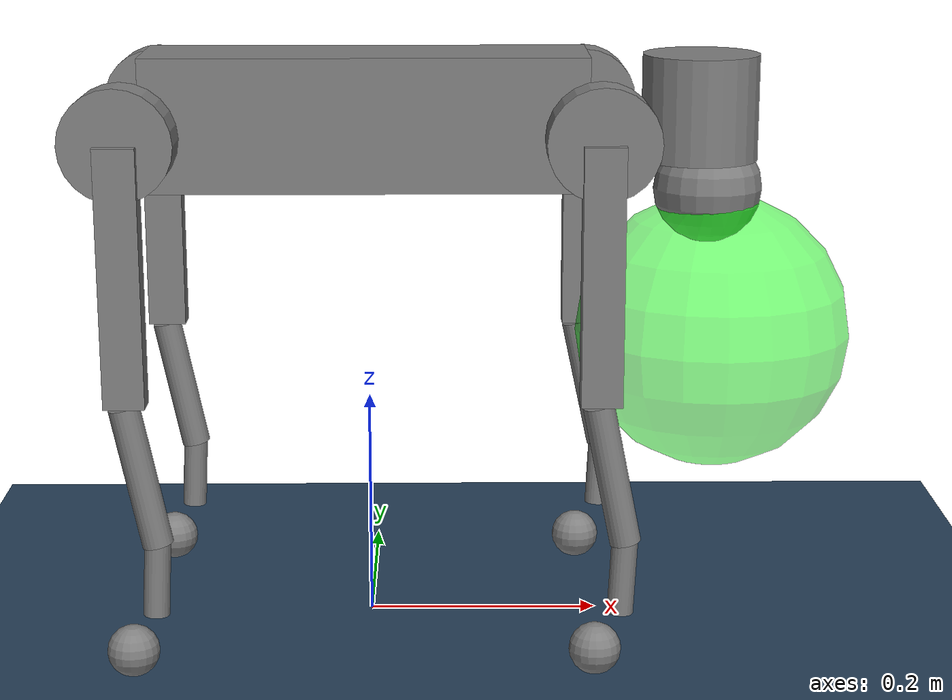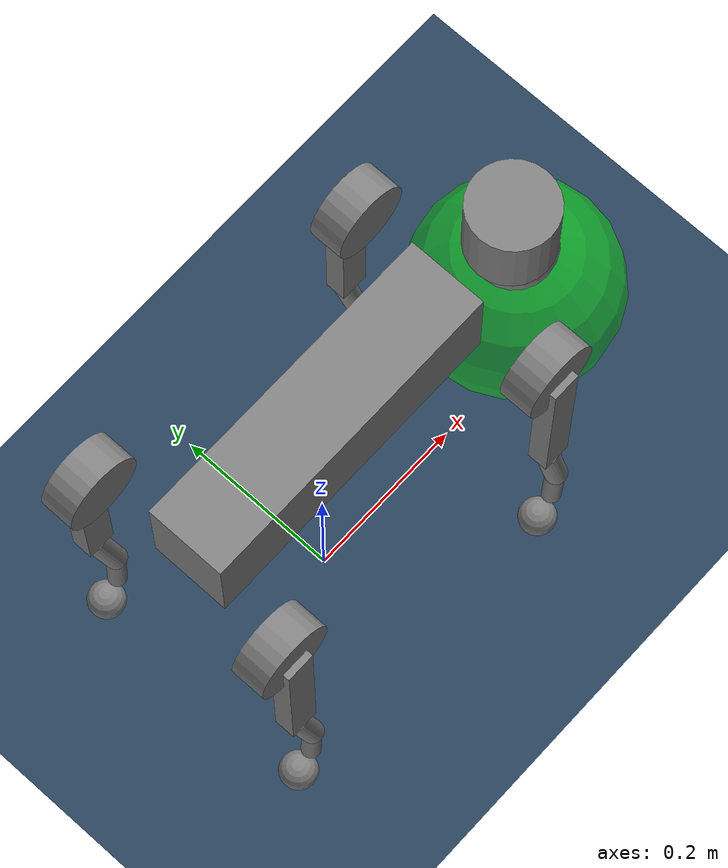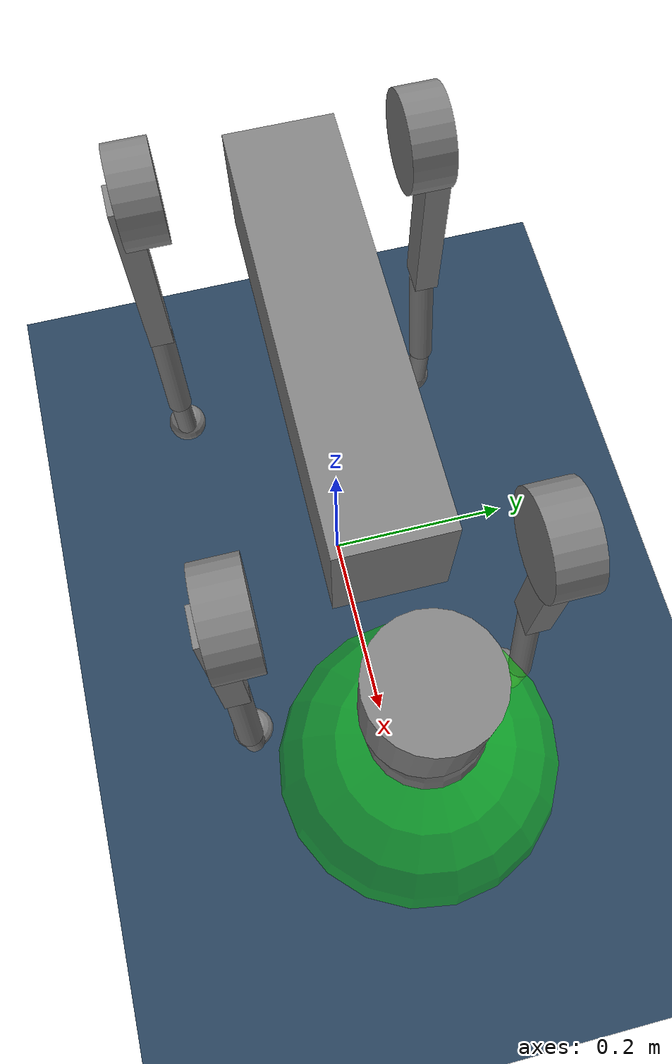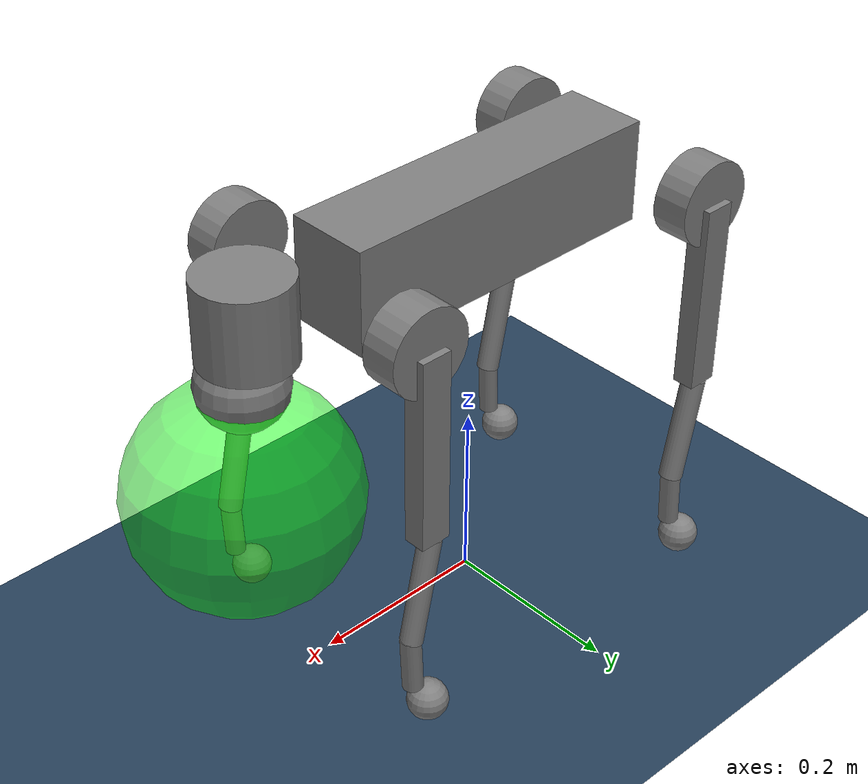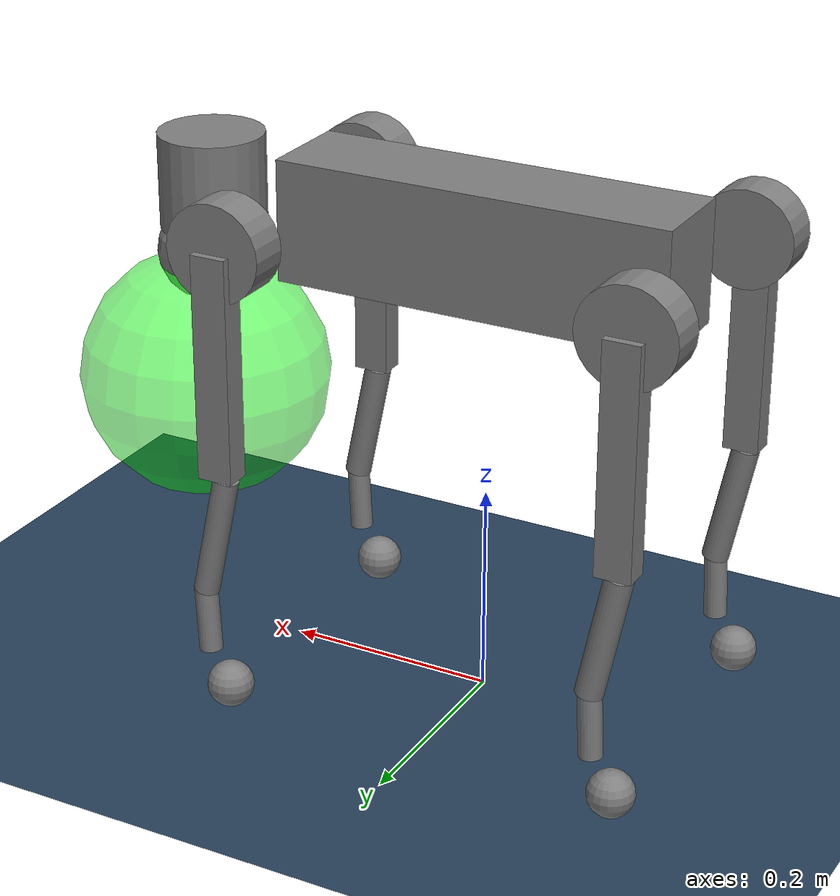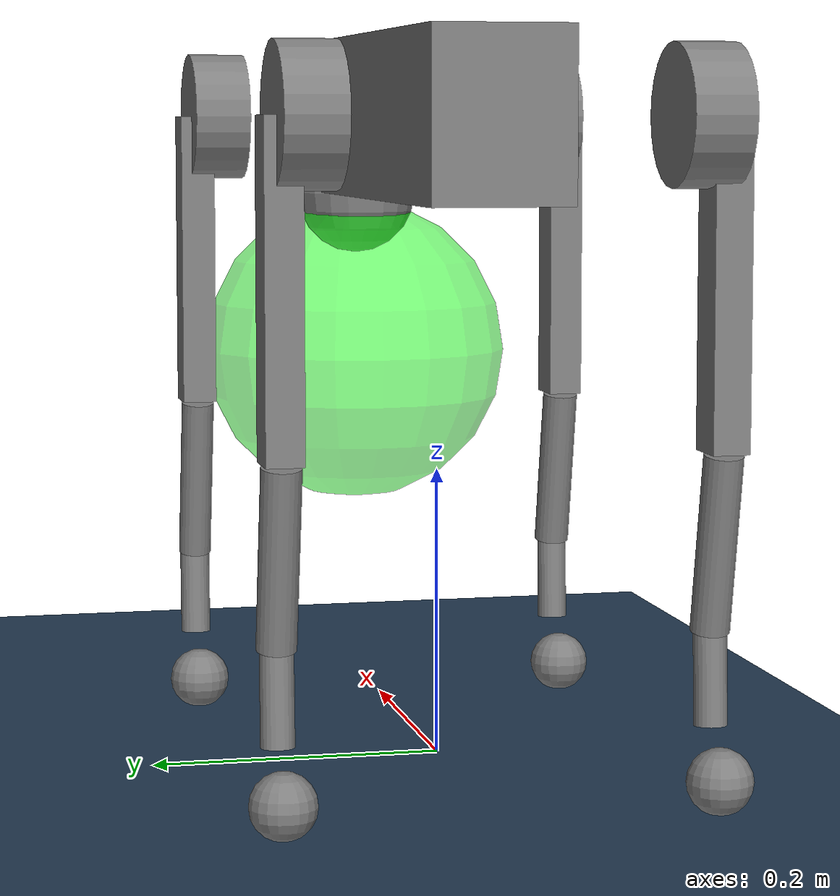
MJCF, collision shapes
<mujoco model="Quadruped">
  <include file="../common.xml"/>
  <size memory="1M" nconmax="16"/>

  <statistic center="0 0 0.1" extent="0.8"/>

  <custom>
    <!-- agent -->
    <text name="task_transition" data="Quadruped|Biped|Walk|Scramble|Flip"/>
    <numeric name="agent_planner" data="2"/>
    <numeric name="agent_horizon" data="0.35"/>
    <numeric name="agent_timestep" data="0.01"/>
    <numeric name="sampling_spline_points" data="3"/>
    <numeric name="sampling_trajectories" data="60"/>
    <numeric name="sampling_exploration" data="0.04"/>
    <numeric name="gradient_spline_points" data="5"/>

    <!-- residual -->
    <numeric name="residual_select_Gait" data="0"/>
    <text name="residual_list_Gait" data="Stand|Walk|Trot|Canter|Gallop"/>
    <numeric name="residual_select_Gait switch" data="1"/>
    <text name="residual_list_Gait switch" data="Manual|Automatic"/>
    <numeric name="residual_Cadence" data="2 0 4"/>
    <numeric name="residual_Amplitude" data=".06 0 0.2"/>
    <numeric name="residual_Duty ratio" data="0 0 1"/>
    <numeric name="residual_Deprecated" data="0 0 4"/>
    <numeric name="residual_Walk turn" data="0 -2 2"/>
    <numeric name="residual_select_Flip dir" data="0"/>
    <text name="residual_list_Flip dir" data="Back Flip|Front Flip"/>
    <numeric name="residual_select_Biped type" data="0"/>
    <text name="residual_list_Biped type" data="Foot Stand|Hand Stand"/>
    <numeric name="residual_Heading" data="0 -3.14 3.14"/>
    <numeric name="residual_Arm posture" data=".03 0 1"/>

    <!-- estimator -->
    <numeric name="estimator" data="1"/>
    <numeric name="estimator_sensor_start" data="9"/>
    <numeric name="estimator_number_sensor" data="21"/>
    <numeric name="estimator_timestep" data="0.005"/>
    <numeric name="batch_configuration_length" data="3"/>
    <numeric name="batch_scale_prior" data="1.0e-3"/>
  </custom>

  <asset>
    <texture type="skybox" builtin="gradient" rgb1="0.3 0.5 0.7" rgb2="0 0 0" width="512" height="3072"/>
    <texture type="2d" name="groundplane" builtin="checker" mark="edge" rgb1="0.2 0.3 0.4" rgb2="0.1 0.2 0.3"
      markrgb="0.8 0.8 0.8" width="300" height="300"/>
    <material name="groundplane" texture="groundplane" texuniform="true" texrepeat="5 5" reflectance="0.2"/>

    <hfield name="hf133"
          file="../assets/white_16x32.png"
          size="0.5 0.25 2.0 0.001"/>

  </asset>

  <visual>
    <headlight diffuse="0.6 0.6 0.6" ambient="0.3 0.3 0.3" specular="0 0 0"/>
    <rgba haze="0.15 0.25 0.35 1"/>
    <global azimuth="-130" elevation="-20"/>
  </visual>

  <worldbody>
    <light pos="0 0 1.5" dir="0 0 -1" diffuse="0.5 0.5 0.5" specular="0.3 0.3 0.3" directional="true" castshadow="false"/>
    <geom name="floor" size="0 0 0.05" type="plane" material="groundplane"/>

    <body name="goal" mocap="true" pos=".3 0 0.26">
      <geom size="0.12" contype="0" conaffinity="0" rgba="0 1 0 .5" group="2"/>
    </body>
  </worldbody>

  <!-- go2 model -->
  <include file="go2.xml" />

  <!-- home pose -->

  <!-- original pose -->
  <keyframe>
    <key name="home" qpos="0 0 0.27 1 0 0 0 0 0.9 -1.8 0 0.9 -1.8 0 0.9 -1.8 0 0.9 -1.8"
      ctrl="0 0.9 -1.8 0 0.9 -1.8 0 0.9 -1.8 0 0.9 -1.8"/>
  </keyframe>

</mujoco>

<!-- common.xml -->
<mujoco>

  <visual>
    <headlight ambient=".4 .4 .4" diffuse=".8 .8 .8" specular="0.1 0.1 0.1"/>
    <map znear=".01"/>
    <quality shadowsize="2048"/>
    <global elevation="-15"/>
  </visual>

  <asset>
    <texture name="blue_grid" type="2d" builtin="checker" rgb1=".02 .14 .44" rgb2=".27 .55 1" width="300" height="300" mark="edge" markrgb="1 1 1"/>
    <material name="blue_grid" texture="blue_grid" texrepeat="1 1" texuniform="true" reflectance=".2"/>

    <texture name="grey_grid" type="2d" builtin="checker" rgb1=".26 .26 .26" rgb2=".6 .6 .6" width="300" height="300" mark="edge" markrgb="1 1 1"/>
    <material name="grey_grid" texture="grey_grid" texrepeat="1 1" texuniform="true" reflectance=".2"/>
    <texture name="skybox" type="skybox" builtin="gradient" rgb1=".05 .07 .15" rgb2=".18 .24 .38" width="800" height="800"/>

    <material name="self" rgba=".7 .5 .3 1"/>
    <material name="self_default" rgba=".7 .5 .3 1"/>
    <material name="self_highlight" rgba="0 .5 .3 1"/>
    <material name="effector" rgba=".7 .4 .2 1"/>
    <material name="effector_default" rgba=".7 .4 .2 1"/>
    <material name="effector_highlight" rgba="0 .5 .3 1"/>
    <material name="decoration" rgba=".2 .6 .3 1"/>
    <material name="eye" rgba="0 .2 1 1"/>
    <material name="target" rgba=".6 .3 .3 1"/>
    <material name="target_default" rgba=".6 .3 .3 1"/>
    <material name="target_highlight" rgba=".6 .3 .3 .4"/>
    <material name="site" rgba=".5 .5 .5 .3"/>
  </asset>
</mujoco>

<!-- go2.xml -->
<mujoco model="Unitree Go2">
  <compiler angle="radian" meshdir="assets" autolimits="true"/>

  <option cone="elliptic" impratio="100" integrator="implicitfast" timestep="0.0001"/>

  <default>
    <default class="go2">
      <geom friction="0.6" margin="0.001" condim="1"/>
      <joint axis="0 1 0" damping="2" armature="0.01" frictionloss="0.2"/>

      <!-- Abduction Joint -->
      <default class="abduction">
        <joint axis="1 0 0" range="-1.0472 1.0472" actuatorfrcrange="-23.7 23.7"/>
        <position kp="60" kv="5" ctrllimited="true" ctrlrange="-1.0472 1.0472"/>
      </default>

      <!-- Front Hip Joints -->
      <default class="front_hip">
        <joint range="-1.5708 3.4907" actuatorfrcrange="-23.7 23.7"/>
        <position kp="60" kv="5" ctrllimited="true" ctrlrange="-1.5708 3.4907"/>
      </default>

      <!-- Back Hip Joints -->
      <default class="back_hip">
        <joint range="-0.5236 4.5379" actuatorfrcrange="-23.7 23.7"/>
        <position kp="60" kv="5" ctrllimited="true" ctrlrange="-0.5236 4.5379"/>
      </default>

      <!-- Knee Joint -->
      <default class="knee">
        <joint range="-2.7227 -0.83776" actuatorfrcrange="-45.43 45.43"/>
        <position kp="60" kv="5" ctrllimited="true" ctrlrange="-2.7227 -0.83776"/>
      </default>

      <!-- Visual -->
      <default class="visual">
        <geom type="mesh" contype="0" conaffinity="0" group="2"/>
      </default>

      <!-- Collision -->
      <default class="collision">
        <geom group="3" contype="0" conaffinity="0"/>
        <default class="foot">
          <geom size="0.022" pos="-0.002 0 -0.213" priority="1" solimp="0.015 1 0.022" condim="3" friction="0.8 0.02 0.01"/>
        </default>
      </default>
    </default>

    <default class="task">
      <site rgba="1 0 0 1" size=".02" group="5"/>
      <default class="flight">
        <site rgba="1 .3 .3 1" size="0.019" group="5"/>
      </default>
      <default class="stance">
        <site rgba=".3 1 .3 1" size=".018" group="4"/>
      </default>
    </default>
  </default>

  <asset>
    <material name="metal" rgba=".9 .95 .95 1" />
    <material name="black" rgba="0 0 0 1" />
    <material name="white" rgba="1 1 1 1" />
    <material name="gray" rgba="0.671705 0.692426 0.774270 1" />

    <mesh file="base_0.obj" />
    <mesh file="base_1.obj" />
    <mesh file="base_2.obj" />
    <mesh file="base_3.obj" />
    <mesh file="base_4.obj" />
    <mesh file="hip_0.obj" />
    <mesh file="hip_1.obj" />
    <mesh file="thigh_0.obj" />
    <mesh file="thigh_1.obj" />
    <mesh file="thigh_mirror_0.obj" />
    <mesh file="thigh_mirror_1.obj" />
    <mesh file="calf_0.obj" />
    <mesh file="calf_1.obj" />
    <mesh file="calf_mirror_0.obj" />
    <mesh file="calf_mirror_1.obj" />
    <mesh file="foot.obj" />
  </asset>

  <worldbody>
    <!-- GO2 robot with consistent names and inertial tuned to GO2 -->
    <body name="trunk" pos="0 0 0.445" childclass="go2">
      <inertial pos="0.021112 0 -0.005366" quat="-0.000543471 0.713435 -0.00173769 0.700719"
        mass="6.921"
        diaginertia="0.107027 0.0980771 0.0244531" />
      <freejoint/>

      <geom mesh="base_0" material="black" class="visual" />
      <geom mesh="base_1" material="black" class="visual" />
      <geom mesh="base_2" material="black" class="visual" />
      <geom mesh="base_3" material="white" class="visual" />
      <geom mesh="base_4" material="gray"  class="visual" />
      <geom name="trunk_box_coll" size="0.1881 0.04675 0.057" type="box" class="collision" contype="32" conaffinity="0" />
      <geom name="head_cyl" size="0.05 0.045" pos="0.285 0 0.01" type="cylinder" class="collision" contype="64" conaffinity="0"/>
      <geom name="lidar_sph" size="0.047" pos="0.293 0 -0.06" class="collision" contype="128" conaffinity="0"/>

      <site name="imu" pos="-0.02557 0 0.04232" />

      <!-- mjpc compatibility -->
      <site name="torso"/>
      <site name="head" pos=".3 0 0" class="task" size="5"/>

      <!-- Front Left Leg -->
      <body name="FL_hip" pos="0.1934 0.0465 0">
        <inertial pos="-0.0054 0.00194 -0.000105" quat="0.497014 0.499245 0.505462 0.498237"
          mass="0.678"
          diaginertia="0.00088403 0.000596003 0.000479967" />
        <joint name="FL_hip_joint" class="abduction" />
        <geom mesh="hip_0" material="metal" class="visual" />
        <geom mesh="hip_1" material="gray" class="visual" />
        <geom name="FL_hip_cyl" size="0.046 0.02" pos="0 0.08 0" quat="1 1 0 0" type="cylinder" class="collision" contype="256" conaffinity="0"/>
        <body name="FL_thigh" pos="0 0.0955 0">
          <inertial pos="-0.00374 -0.0223 -0.0327" quat="0.829533 0.0847635 -0.0200632 0.551623"
            mass="1.152"
            diaginertia="0.00594973 0.00584149 0.000878787" />
          <joint name="FL_thigh_joint" class="front_hip" />
          <geom mesh="thigh_0" material="metal" class="visual" />
          <geom mesh="thigh_1" material="gray" class="visual" />
          <geom name="FL_thigh_box" size="0.1065 0.01225 0.017" pos="0 0 -0.1065" quat="0.707107 0 0.707107 0"
            type="box" class="collision" contype="512" conaffinity="0" />
          <body name="FL_calf" pos="0 0 -0.213">
            <inertial pos="0.00629595 -0.000622121 -0.141417"
              quat="0.710672 0.00154099 -0.00450087 0.703508"
              mass="0.241352" diaginertia="0.0014901 0.00146356 5.31397e-05" />
            <joint name="FL_calf_joint" class="knee" />
            <geom mesh="calf_0" material="gray" class="visual" />
            <geom mesh="calf_1" material="black" class="visual" />
            <geom name="FL_calf_cyl1" size="0.012 0.06" pos="0.008 0 -0.06" quat="0.994493 0 -0.104807 0"
              type="cylinder" class="collision" contype="1024" conaffinity="0"/>
            <geom name="FL_calf_cyl2" size="0.011 0.0325" pos="0.02 0 -0.148" quat="0.999688 0 0.0249974 0"
              type="cylinder" class="collision" contype="2048" conaffinity="0"/>

            <geom pos="0 0 -0.213" mesh="foot" class="visual" material="black" />
            <geom name="FL" class="foot" contype="2" conaffinity="0" />
            <body name="FL_foot" pos="0 0 -0.213" />
            <site name="FL" pos="0 0 -0.213" />
          </body>
        </body>
      </body>

      <!-- Front Right Leg -->
      <body name="FR_hip" pos="0.1934 -0.0465 0">
        <inertial pos="-0.0054 -0.00194 -0.000105" quat="0.498237 0.505462 0.499245 0.497014"
          mass="0.678"
          diaginertia="0.00088403 0.000596003 0.000479967" />
        <joint name="FR_hip_joint" class="abduction" />
        <geom mesh="hip_0" material="metal" class="visual" quat="4.63268e-05 1 0 0" />
        <geom mesh="hip_1" material="gray" class="visual" quat="4.63268e-05 1 0 0" />
        <geom name="FR_hip_cyl" size="0.046 0.02" pos="0 -0.08 0" quat="0.707107 0.707107 0 0" type="cylinder"
          class="collision" contype="4096" conaffinity="0" />
        <body name="FR_thigh" pos="0 -0.0955 0">
          <inertial pos="-0.00374 0.0223 -0.0327" quat="0.551623 -0.0200632 0.0847635 0.829533"
            mass="1.152"
            diaginertia="0.00594973 0.00584149 0.000878787" />
          <joint name="FR_thigh_joint" class="front_hip" />
          <geom mesh="thigh_mirror_0" material="metal" class="visual" />
          <geom mesh="thigh_mirror_1" material="gray" class="visual" />
          <geom name="FR_thigh_box" size="0.1065 0.01225 0.017" pos="0 0 -0.1065" quat="0.707107 0 0.707107 0"
            type="box" class="collision" contype="8192" conaffinity="0" />
          <body name="FR_calf" pos="0 0 -0.213">
            <inertial pos="0.00629595 0.000622121 -0.141417"
              quat="0.703508 -0.00450087 0.00154099 0.710672"
              mass="0.241352" diaginertia="0.0014901 0.00146356 5.31397e-05" />
            <joint name="FR_calf_joint" class="knee" />
            <geom mesh="calf_mirror_0" material="gray" class="visual" />
            <geom mesh="calf_mirror_1" material="black" class="visual" />
            <geom name="FR_calf_cyl1" size="0.013 0.06" pos="0.01 0 -0.06" quat="0.995004 0 -0.0998334 0"
              type="cylinder" class="collision" contype="16384" conaffinity="0"/>
            <geom name="FR_calf_cyl2" size="0.011 0.0325" pos="0.02 0 -0.148" quat="0.999688 0 0.0249974 0"
              type="cylinder" class="collision" contype="32768" conaffinity="0"/>
            <geom pos="0 0 -0.213" mesh="foot" class="visual" material="black" />
            <geom name="FR" class="foot" contype="4" conaffinity="0" />
            <body name="FR_foot" pos="0 0 -0.213" />

            <site name="FR" pos="0 0 -0.213" />
          </body>
        </body>
      </body>

      <!-- Hind Left Leg (HL) -->
      <body name="HL_hip" pos="-0.1934 0.0465 0">
        <inertial pos="0.0054 0.00194 -0.000105" quat="0.505462 0.498237 0.497014 0.499245"
          mass="0.678"
          diaginertia="0.00088403 0.000596003 0.000479967" />
        <joint name="HL_hip_joint" class="abduction" />
        <geom mesh="hip_0" material="metal" class="visual" quat="4.63268e-05 0 1 0" />
        <geom mesh="hip_1" material="gray" class="visual" quat="4.63268e-05 0 1 0" />
        <geom name="HL_hip_cyl" size="0.046 0.02" pos="0 0.08 0" quat="0.707107 0.707107 0 0" type="cylinder"
          class="collision" contype="65536" conaffinity="0" />
        <body name="HL_thigh" pos="0 0.0955 0">
          <inertial pos="-0.00374 -0.0223 -0.0327" quat="0.829533 0.0847635 -0.0200632 0.551623"
            mass="1.152"
            diaginertia="0.00594973 0.00584149 0.000878787" />
          <joint name="HL_thigh_joint" class="back_hip" />
          <geom mesh="thigh_0" material="metal" class="visual" />
          <geom mesh="thigh_1" material="gray" class="visual" />
          <geom name="HL_thigh_box" size="0.1065 0.01225 0.017" pos="0 0 -0.1065" quat="0.707107 0 0.707107 0"
            type="box" class="collision" contype="131072" conaffinity="0" />
          <body name="HL_calf" pos="0 0 -0.213">
            <inertial pos="0.00629595 -0.000622121 -0.141417"
              quat="0.710672 0.00154099 -0.00450087 0.703508"
              mass="0.241352" diaginertia="0.0014901 0.00146356 5.31397e-05" />
            <joint name="HL_calf_joint" class="knee" />
            <geom mesh="calf_0" material="gray" class="visual" />
            <geom mesh="calf_1" material="black" class="visual" />
            <geom name="HL_calf_cyl1" size="0.013 0.06" pos="0.01 0 -0.06" quat="0.995004 0 -0.0998334 0"
              type="cylinder" class="collision" contype="262144" conaffinity="0"/>
            <geom name="HL_calf_cyl2" size="0.011 0.0325" pos="0.02 0 -0.148" quat="0.999688 0 0.0249974 0"
              type="cylinder" class="collision" contype="524288" conaffinity="0"/>
            <geom pos="0 0 -0.213" mesh="foot" class="visual" material="black" />
            <geom name="HL" class="foot" contype="8" conaffinity="0" />
            <body name="HL_foot" pos="0 0 -0.213" />

            <site name="HL" pos="0 0 -0.213" />
          </body>
        </body>
      </body>

      <!-- Hind Right Leg (HR) -->
      <body name="HR_hip" pos="-0.1934 -0.0465 0">
        <inertial pos="0.0054 -0.00194 -0.000105" quat="0.499245 0.497014 0.498237 0.505462"
          mass="0.678"
          diaginertia="0.00088403 0.000596003 0.000479967" />
        <joint name="HR_hip_joint" class="abduction" />
        <geom mesh="hip_0" material="metal" class="visual"
          quat="2.14617e-09 4.63268e-05 4.63268e-05 -1" />
        <geom mesh="hip_1" material="gray" class="visual"
          quat="2.14617e-09 4.63268e-05 4.63268e-05 -1" />
        <geom name="HR_hip_cyl" size="0.046 0.02" pos="0 -0.08 0" quat="0.707107 0.707107 0 0" type="cylinder"
          class="collision" contype="1048576" conaffinity="0" />
        <body name="HR_thigh" pos="0 -0.0955 0">
          <inertial pos="-0.00374 0.0223 -0.0327" quat="0.551623 -0.0200632 0.0847635 0.829533"
            mass="1.152"
            diaginertia="0.00594973 0.00584149 0.000878787" />
          <joint name="HR_thigh_joint" class="back_hip" />
          <geom mesh="thigh_mirror_0" material="metal" class="visual" />
          <geom mesh="thigh_mirror_1" material="gray" class="visual" />
          <geom name="HR_thigh_box" size="0.1065 0.01225 0.017" pos="0 0 -0.1065" quat="0.707107 0 0.707107 0"
            type="box" class="collision" contype="2097152" conaffinity="0" />
          <body name="HR_calf" pos="0 0 -0.213">
            <inertial pos="0.00629595 0.000622121 -0.141417"
              quat="0.703508 -0.00450087 0.00154099 0.710672"
              mass="0.241352" diaginertia="0.0014901 0.00146356 5.31397e-05" />
            <joint name="HR_calf_joint" class="knee" />
            <geom mesh="calf_mirror_0" material="gray" class="visual" />
            <geom mesh="calf_mirror_1" material="black" class="visual" />
            <geom name="HR_calf_cyl1" size="0.013 0.06" pos="0.01 0 -0.06" quat="0.995004 0 -0.0998334 0"
              type="cylinder" class="collision" contype="4194304" conaffinity="0"/>
            <geom name="HR_calf_cyl2" size="0.011 0.0325" pos="0.02 0 -0.148" quat="0.999688 0 0.0249974 0"
              type="cylinder" class="collision" contype="8388608" conaffinity="0"/>
            <geom pos="0 0 -0.213" mesh="foot" class="visual" material="black" />
            <geom name="HR" class="foot" contype="16" conaffinity="0" />
            <body name="HR_foot" pos="0 0 -0.213" />

            <site name="HR" pos="0 0 -0.213" />
          </body>
        </body>
      </body>
    </body>
  </worldbody>

<!-- Sensors -->
<sensor>
    <user name="Upright" dim="3" user="6 1 0 3 0.05"/>
    <user name="Height" dim="1" user="6 1 0 3 0.04"/>
    <user name="Position" dim="3" user="2 0.2 0 0.5 0.1"/>
    <user name="Gait" dim="4" user="6 2 0 10 0.03"/>
    <user name="Balance" dim="2" user="2 0.2 0 0.3 0.1"/>
    <user name="Velocity" dim="1" user="2 0.1 0 5 0.1"/>
    <user name="Effort" dim="12" user="0 0.03 0.0 0.1"/>
    <user name="Posture" dim="12" user="0 0.02 0.0 0.1"/>
    <user name="Orientation" dim="2" user="0 0 0 .03"/>
    <user name="Angmom" dim="3" user="0 0 0 .03"/>

    <!-- ours -->
    <user name="FootCost" dim="4" user="2 0 0 0.2 0.1"/>
    <user name="NormClear" dim="10" user="2 4.0 0 5 0.1"/>

    <jointpos name="pos_FR_hip_joint" joint="FR_hip_joint"/>
    <jointpos name="pos_FR_thigh_joint" joint="FR_thigh_joint"/>
    <jointpos name="pos_FR_calf_joint" joint="FR_calf_joint"/>
    <jointpos name="pos_FL_hip_joint" joint="FL_hip_joint"/>
    <jointpos name="pos_FL_thigh_joint" joint="FL_thigh_joint"/>
    <jointpos name="pos_FL_calf_joint" joint="FL_calf_joint"/>
    <jointpos name="pos_HR_hip_joint" joint="HR_hip_joint"/>
    <jointpos name="pos_HR_thigh_joint" joint="HR_thigh_joint"/>
    <jointpos name="pos_HR_calf_joint" joint="HR_calf_joint"/>
    <jointpos name="pos_HL_hip_joint" joint="HL_hip_joint"/>
    <jointpos name="pos_HL_thigh_joint" joint="HL_thigh_joint"/>
    <jointpos name="pos_HL_calf_joint" joint="HL_calf_joint"/>

    <jointvel name="FR_hip_vel" joint="FR_hip_joint" />
    <jointvel name="FR_thigh_vel" joint="FR_thigh_joint" />
    <jointvel name="FR_calf_vel" joint="FR_calf_joint" />
    <jointvel name="FL_hip_vel" joint="FL_hip_joint" />
    <jointvel name="FL_thigh_vel" joint="FL_thigh_joint" />
    <jointvel name="FL_calf_vel" joint="FL_calf_joint" />
    <jointvel name="HR_hip_vel" joint="HR_hip_joint" />
    <jointvel name="HR_thigh_vel" joint="HR_thigh_joint" />
    <jointvel name="HR_calf_vel" joint="HR_calf_joint" />
    <jointvel name="HL_hip_vel" joint="HL_hip_joint" />
    <jointvel name="HL_thigh_vel" joint="HL_thigh_joint" />
    <jointvel name="HL_calf_vel" joint="HL_calf_joint" />

    <jointactuatorfrc name="FR_hip_torque" joint="FR_hip_joint" noise="0.01" />
    <jointactuatorfrc name="FR_thigh_torque" joint="FR_thigh_joint" noise="0.01" />
    <jointactuatorfrc name="FR_calf_torque" joint="FR_calf_joint" noise="0.01" />
    <jointactuatorfrc name="FL_hip_torque" joint="FL_hip_joint" noise="0.01" />
    <jointactuatorfrc name="FL_thigh_torque" joint="FL_thigh_joint" noise="0.01" />
    <jointactuatorfrc name="FL_calf_torque" joint="FL_calf_joint" noise="0.01" />
    <jointactuatorfrc name="HR_hip_torque" joint="HR_hip_joint" noise="0.01" />
    <jointactuatorfrc name="HR_thigh_torque" joint="HR_thigh_joint" noise="0.01" />
    <jointactuatorfrc name="HR_calf_torque" joint="HR_calf_joint" noise="0.01" />
    <jointactuatorfrc name="HL_hip_torque" joint="HL_hip_joint" noise="0.01" />
    <jointactuatorfrc name="HL_thigh_torque" joint="HL_thigh_joint" noise="0.01" />
    <jointactuatorfrc name="HL_calf_torque" joint="HL_calf_joint" noise="0.01" />

    <framequat name="imu_quat" objtype="site" objname="imu"/>
    <gyro name="imu_gyro" site="imu"/>
    <accelerometer name="imu_acc" site="imu"/>

    <framepos name="frame_pos" objtype="site" objname="imu"/>
    <framelinvel name="frame_vel" objtype="site" objname="imu"/>

    <!-- mjpc -->
    <framepos name="torso_pos" objtype="site" objname="torso"/>
    <framepos name="FR_pos" objtype="site" objname="FR"/>
    <framepos name="FL_pos" objtype="site" objname="FL"/>
    <framepos name="HR_pos" objtype="site" objname="HR"/>
    <framepos name="HL_pos" objtype="site" objname="HL"/>
    <framepos name="trace0" objtype="site" objname="head"/>

    <touch name="FR_touch" site="FR"/>
    <touch name="FL_touch" site="FL"/>
    <touch name="HR_touch" site="HR"/>
    <touch name="HL_touch" site="HL"/>

    <subtreecom name="torso_subtreecom" body="trunk"/>
    <subtreelinvel name="torso_subtreelinvel" body="trunk"/>
    <subtreelinvel name="torso_angmom" body="trunk"/>
</sensor>

<actuator>
	<position class="abduction" name="FR_hip" joint="FR_hip_joint"/>
	<position class="front_hip" name="FR_thigh" joint="FR_thigh_joint"/>
	<position class="knee" name="FR_calf" joint="FR_calf_joint"/>
	<position class="abduction" name="FL_hip" joint="FL_hip_joint"/>
	<position class="front_hip" name="FL_thigh" joint="FL_thigh_joint"/>
	<position class="knee" name="FL_calf" joint="FL_calf_joint"/>
	<position class="abduction" name="HR_hip" joint="HR_hip_joint"/>
	<position class="back_hip" name="HR_thigh" joint="HR_thigh_joint"/>
	<position class="knee" name="HR_calf" joint="HR_calf_joint"/>
	<position class="abduction" name="HL_hip" joint="HL_hip_joint"/>
	<position class="back_hip" name="HL_thigh" joint="HL_thigh_joint"/>
	<position class="knee" name="HL_calf" joint="HL_calf_joint"/>
</actuator>

</mujoco>
